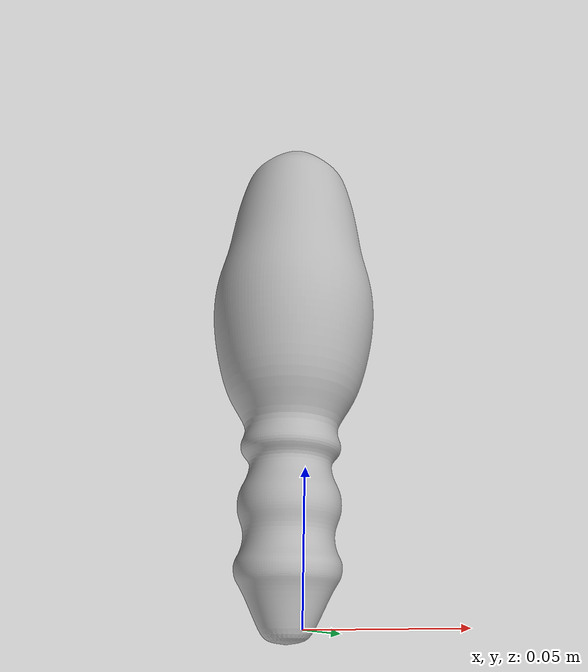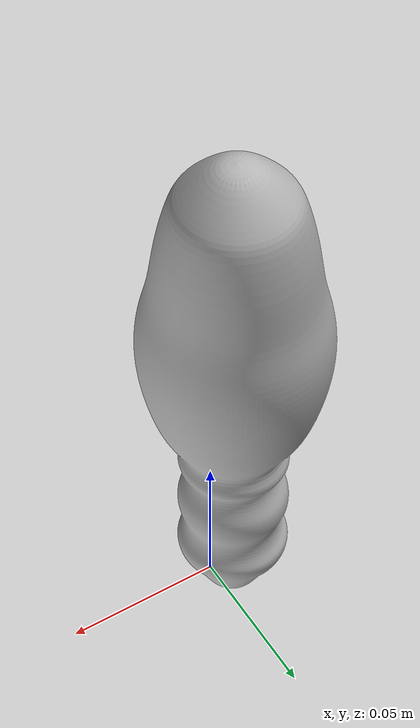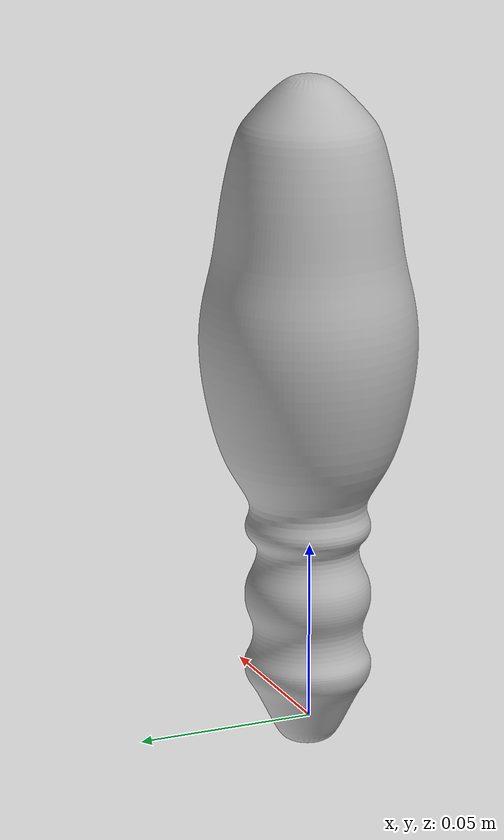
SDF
<?xml version='1.0'?>

<sdf version='1.4'>
	<model name="long_bulb">
			<link name="base">
			<pose>0 0 0 0 0 0</pose>
				<visual name="visual">
					<geometry>
						<mesh>
							<uri>model://long_bulb/meshes/long_bulb.dae</uri>
						</mesh>
					</geometry>
				</visual>

				<collision name="collision">
					<geometry>
						<mesh>
							<uri>model://long_bulb/meshes/long_bulb.dae</uri>
						</mesh>
					</geometry>
				</collision>

				<inertial>
					<mass>0.1</mass>
					<pose>0 0 0 0 0 0</pose>
				</inertial>

      		</link>
	</model>
</sdf>
